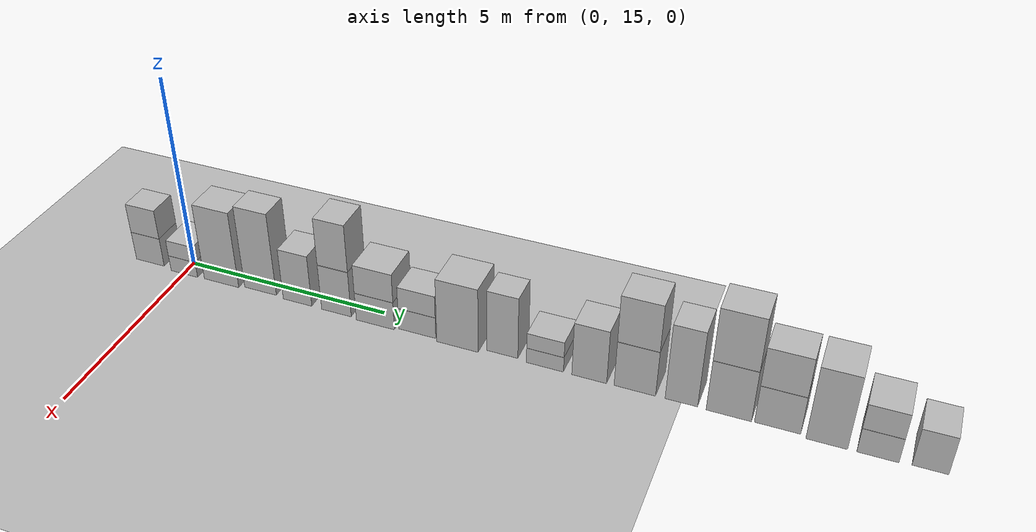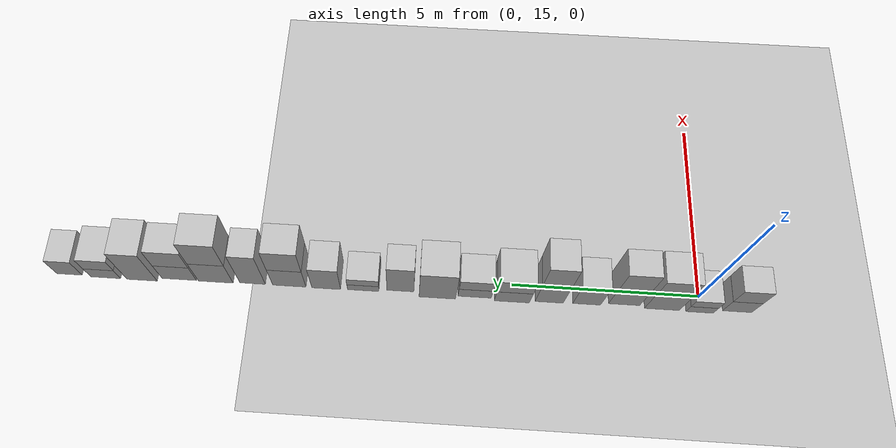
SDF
<sdf version="1.5">
 <world name="default">
  <model name="ground_plane">
   <static>true</static>
   <link name="link">
    <collision name="collision">
     <geometry><plane><normal>0 0 1</normal><size>250 250</size></plane></geometry>
     <surface><friction><ode><mu>1</mu><mu2>1</mu2></ode></friction></surface>
    </collision>
    <visual name="grass">
     <cast_shadows>false</cast_shadows>
     <geometry><mesh><uri>file://grass_plane/meshes/grass_plane.dae</uri></mesh></geometry>
    </visual>
   </link>
  </model>
  <model name="Cardboard_box_484">
   <link name="link_0">
    <pose>0 14 0 0 0 0</pose>
    <inertial>
     <mass>1</mass>
     <inertia>
      <ixx>0.166667</ixx>
      <ixy>0</ixy>
      <ixz>0</ixz>
      <iyy>0.166667</iyy>
      <iyz>0</iyz>
      <izz>0.166667</izz>
     </inertia>
    </inertial>
    <collision name="collision">
     <geometry>
      <mesh>
       <uri>model://Cardboard_box/meshes/cardboard_box.dae</uri>
       <scale>1.78481445856 1.95210257599 1.99450164474</scale>
      </mesh>
     </geometry>
    </collision>
    <visual name="visual">
     <geometry>
      <mesh>
       <uri>model://Cardboard_box/meshes/cardboard_box.dae</uri>
       <scale>1.78481445856 1.95210257599 1.99450164474</scale>
      </mesh>
     </geometry>
    </visual>
   </link>
   <static>1</static>
  </model>
  <model name="Cardboard_box_top_484">
   <link name="link_0">
    <pose>0 14 0.797800657898 0 0 0</pose>
    <inertial>
     <mass>1</mass>
     <inertia>
      <ixx>0.166667</ixx>
      <ixy>0</ixy>
      <ixz>0</ixz>
      <iyy>0.166667</iyy>
      <iyz>0</iyz>
      <izz>0.166667</izz>
     </inertia>
    </inertial>
    <collision name="collision">
     <geometry>
      <mesh>
       <uri>model://Cardboard_box/meshes/cardboard_box.dae</uri>
       <scale>1.78481445856 1.95210257599 1.99450164474</scale>
      </mesh>
     </geometry>
    </collision>
    <visual name="visual">
     <geometry>
      <mesh>
       <uri>model://Cardboard_box/meshes/cardboard_box.dae</uri>
       <scale>1.78481445856 1.95210257599 1.99450164474</scale>
      </mesh>
     </geometry>
    </visual>
   </link>
   <static>1</static>
  </model>
  <model name="Cardboard_box_485">
   <link name="link_0">
    <pose>0 15 0 0 0 0</pose>
    <inertial>
     <mass>1</mass>
     <inertia>
      <ixx>0.166667</ixx>
      <ixy>0</ixy>
      <ixz>0</ixz>
      <iyy>0.166667</iyy>
      <iyz>0</iyz>
      <izz>0.166667</izz>
     </inertia>
    </inertial>
    <collision name="collision">
     <geometry>
      <mesh>
       <uri>model://Cardboard_box/meshes/cardboard_box.dae</uri>
       <scale>2.20744234936 1.83287435469 1.09911375683</scale>
      </mesh>
     </geometry>
    </collision>
    <visual name="visual">
     <geometry>
      <mesh>
       <uri>model://Cardboard_box/meshes/cardboard_box.dae</uri>
       <scale>2.20744234936 1.83287435469 1.09911375683</scale>
      </mesh>
     </geometry>
    </visual>
   </link>
   <static>1</static>
  </model>
  <model name="Cardboard_box_top_485">
   <link name="link_0">
    <pose>0 15 0.439645502732 0 0 0</pose>
    <inertial>
     <mass>1</mass>
     <inertia>
      <ixx>0.166667</ixx>
      <ixy>0</ixy>
      <ixz>0</ixz>
      <iyy>0.166667</iyy>
      <iyz>0</iyz>
      <izz>0.166667</izz>
     </inertia>
    </inertial>
    <collision name="collision">
     <geometry>
      <mesh>
       <uri>model://Cardboard_box/meshes/cardboard_box.dae</uri>
       <scale>2.20744234936 1.83287435469 1.09911375683</scale>
      </mesh>
     </geometry>
    </collision>
    <visual name="visual">
     <geometry>
      <mesh>
       <uri>model://Cardboard_box/meshes/cardboard_box.dae</uri>
       <scale>2.20744234936 1.83287435469 1.09911375683</scale>
      </mesh>
     </geometry>
    </visual>
   </link>
   <static>1</static>
  </model>
  <model name="Cardboard_box_486">
   <link name="link_0">
    <pose>0 16 0 0 0 0</pose>
    <inertial>
     <mass>1</mass>
     <inertia>
      <ixx>0.166667</ixx>
      <ixy>0</ixy>
      <ixz>0</ixz>
      <iyy>0.166667</iyy>
      <iyz>0</iyz>
      <izz>0.166667</izz>
     </inertia>
    </inertial>
    <collision name="collision">
     <geometry>
      <mesh>
       <uri>model://Cardboard_box/meshes/cardboard_box.dae</uri>
       <scale>2.1160084739 2.3361882195 5.29765422227</scale>
      </mesh>
     </geometry>
    </collision>
    <visual name="visual">
     <geometry>
      <mesh>
       <uri>model://Cardboard_box/meshes/cardboard_box.dae</uri>
       <scale>2.1160084739 2.3361882195 5.29765422227</scale>
      </mesh>
     </geometry>
    </visual>
   </link>
   <static>1</static>
  </model>
  <model name="Cardboard_box_487">
   <link name="link_0">
    <pose>0 17 0 0 0 0</pose>
    <inertial>
     <mass>1</mass>
     <inertia>
      <ixx>0.166667</ixx>
      <ixy>0</ixy>
      <ixz>0</ixz>
      <iyy>0.166667</iyy>
      <iyz>0</iyz>
      <izz>0.166667</izz>
     </inertia>
    </inertial>
    <collision name="collision">
     <geometry>
      <mesh>
       <uri>model://Cardboard_box/meshes/cardboard_box.dae</uri>
       <scale>1.76354040821 2.10359339671 5.72473711056</scale>
      </mesh>
     </geometry>
    </collision>
    <visual name="visual">
     <geometry>
      <mesh>
       <uri>model://Cardboard_box/meshes/cardboard_box.dae</uri>
       <scale>1.76354040821 2.10359339671 5.72473711056</scale>
      </mesh>
     </geometry>
    </visual>
   </link>
   <static>1</static>
  </model>
  <model name="Cardboard_box_488">
   <link name="link_0">
    <pose>0 18 0 0 0 0</pose>
    <inertial>
     <mass>1</mass>
     <inertia>
      <ixx>0.166667</ixx>
      <ixy>0</ixy>
      <ixz>0</ixz>
      <iyy>0.166667</iyy>
      <iyz>0</iyz>
      <izz>0.166667</izz>
     </inertia>
    </inertial>
    <collision name="collision">
     <geometry>
      <mesh>
       <uri>model://Cardboard_box/meshes/cardboard_box.dae</uri>
       <scale>2.03437143408 1.86106038247 3.5471341314</scale>
      </mesh>
     </geometry>
    </collision>
    <visual name="visual">
     <geometry>
      <mesh>
       <uri>model://Cardboard_box/meshes/cardboard_box.dae</uri>
       <scale>2.03437143408 1.86106038247 3.5471341314</scale>
      </mesh>
     </geometry>
    </visual>
   </link>
   <static>1</static>
  </model>
  <model name="Cardboard_box_489">
   <link name="link_0">
    <pose>0 19 0 0 0 0</pose>
    <inertial>
     <mass>1</mass>
     <inertia>
      <ixx>0.166667</ixx>
      <ixy>0</ixy>
      <ixz>0</ixz>
      <iyy>0.166667</iyy>
      <iyz>0</iyz>
      <izz>0.166667</izz>
     </inertia>
    </inertial>
    <collision name="collision">
     <geometry>
      <mesh>
       <uri>model://Cardboard_box/meshes/cardboard_box.dae</uri>
       <scale>2.07848241554 1.88696796736 3.16638839027</scale>
      </mesh>
     </geometry>
    </collision>
    <visual name="visual">
     <geometry>
      <mesh>
       <uri>model://Cardboard_box/meshes/cardboard_box.dae</uri>
       <scale>2.07848241554 1.88696796736 3.16638839027</scale>
      </mesh>
     </geometry>
    </visual>
   </link>
   <static>1</static>
  </model>
  <model name="Cardboard_box_top_489">
   <link name="link_0">
    <pose>0 19 1.26655535611 0 0 0</pose>
    <inertial>
     <mass>1</mass>
     <inertia>
      <ixx>0.166667</ixx>
      <ixy>0</ixy>
      <ixz>0</ixz>
      <iyy>0.166667</iyy>
      <iyz>0</iyz>
      <izz>0.166667</izz>
     </inertia>
    </inertial>
    <collision name="collision">
     <geometry>
      <mesh>
       <uri>model://Cardboard_box/meshes/cardboard_box.dae</uri>
       <scale>2.07848241554 1.88696796736 3.16638839027</scale>
      </mesh>
     </geometry>
    </collision>
    <visual name="visual">
     <geometry>
      <mesh>
       <uri>model://Cardboard_box/meshes/cardboard_box.dae</uri>
       <scale>2.07848241554 1.88696796736 3.16638839027</scale>
      </mesh>
     </geometry>
    </visual>
   </link>
   <static>1</static>
  </model>
  <model name="Cardboard_box_490">
   <link name="link_0">
    <pose>0 20 0 0 0 0</pose>
    <inertial>
     <mass>1</mass>
     <inertia>
      <ixx>0.166667</ixx>
      <ixy>0</ixy>
      <ixz>0</ixz>
      <iyy>0.166667</iyy>
      <iyz>0</iyz>
      <izz>0.166667</izz>
     </inertia>
    </inertial>
    <collision name="collision">
     <geometry>
      <mesh>
       <uri>model://Cardboard_box/meshes/cardboard_box.dae</uri>
       <scale>2.33740824375 2.37336328988 1.93179243716</scale>
      </mesh>
     </geometry>
    </collision>
    <visual name="visual">
     <geometry>
      <mesh>
       <uri>model://Cardboard_box/meshes/cardboard_box.dae</uri>
       <scale>2.33740824375 2.37336328988 1.93179243716</scale>
      </mesh>
     </geometry>
    </visual>
   </link>
   <static>1</static>
  </model>
  <model name="Cardboard_box_top_490">
   <link name="link_0">
    <pose>0 20 0.772716974864 0 0 0</pose>
    <inertial>
     <mass>1</mass>
     <inertia>
      <ixx>0.166667</ixx>
      <ixy>0</ixy>
      <ixz>0</ixz>
      <iyy>0.166667</iyy>
      <iyz>0</iyz>
      <izz>0.166667</izz>
     </inertia>
    </inertial>
    <collision name="collision">
     <geometry>
      <mesh>
       <uri>model://Cardboard_box/meshes/cardboard_box.dae</uri>
       <scale>2.33740824375 2.37336328988 1.93179243716</scale>
      </mesh>
     </geometry>
    </collision>
    <visual name="visual">
     <geometry>
      <mesh>
       <uri>model://Cardboard_box/meshes/cardboard_box.dae</uri>
       <scale>2.33740824375 2.37336328988 1.93179243716</scale>
      </mesh>
     </geometry>
    </visual>
   </link>
   <static>1</static>
  </model>
  <model name="Cardboard_box_491">
   <link name="link_0">
    <pose>0 21 0 0 0 0</pose>
    <inertial>
     <mass>1</mass>
     <inertia>
      <ixx>0.166667</ixx>
      <ixy>0</ixy>
      <ixz>0</ixz>
      <iyy>0.166667</iyy>
      <iyz>0</iyz>
      <izz>0.166667</izz>
     </inertia>
    </inertial>
    <collision name="collision">
     <geometry>
      <mesh>
       <uri>model://Cardboard_box/meshes/cardboard_box.dae</uri>
       <scale>1.99371883114 2.25232498525 1.4755215318</scale>
      </mesh>
     </geometry>
    </collision>
    <visual name="visual">
     <geometry>
      <mesh>
       <uri>model://Cardboard_box/meshes/cardboard_box.dae</uri>
       <scale>1.99371883114 2.25232498525 1.4755215318</scale>
      </mesh>
     </geometry>
    </visual>
   </link>
   <static>1</static>
  </model>
  <model name="Cardboard_box_top_491">
   <link name="link_0">
    <pose>0 21 0.590208612721 0 0 0</pose>
    <inertial>
     <mass>1</mass>
     <inertia>
      <ixx>0.166667</ixx>
      <ixy>0</ixy>
      <ixz>0</ixz>
      <iyy>0.166667</iyy>
      <iyz>0</iyz>
      <izz>0.166667</izz>
     </inertia>
    </inertial>
    <collision name="collision">
     <geometry>
      <mesh>
       <uri>model://Cardboard_box/meshes/cardboard_box.dae</uri>
       <scale>1.99371883114 2.25232498525 1.4755215318</scale>
      </mesh>
     </geometry>
    </collision>
    <visual name="visual">
     <geometry>
      <mesh>
       <uri>model://Cardboard_box/meshes/cardboard_box.dae</uri>
       <scale>1.99371883114 2.25232498525 1.4755215318</scale>
      </mesh>
     </geometry>
    </visual>
   </link>
   <static>1</static>
  </model>
  <model name="Cardboard_box_492">
   <link name="link_0">
    <pose>0 22 0 0 0 0</pose>
    <inertial>
     <mass>1</mass>
     <inertia>
      <ixx>0.166667</ixx>
      <ixy>0</ixy>
      <ixz>0</ixz>
      <iyy>0.166667</iyy>
      <iyz>0</iyz>
      <izz>0.166667</izz>
     </inertia>
    </inertial>
    <collision name="collision">
     <geometry>
      <mesh>
       <uri>model://Cardboard_box/meshes/cardboard_box.dae</uri>
       <scale>2.42751208898 2.4667304502 4.36444402055</scale>
      </mesh>
     </geometry>
    </collision>
    <visual name="visual">
     <geometry>
      <mesh>
       <uri>model://Cardboard_box/meshes/cardboard_box.dae</uri>
       <scale>2.42751208898 2.4667304502 4.36444402055</scale>
      </mesh>
     </geometry>
    </visual>
   </link>
   <static>1</static>
  </model>
  <model name="Cardboard_box_493">
   <link name="link_0">
    <pose>0 23 0 0 0 0</pose>
    <inertial>
     <mass>1</mass>
     <inertia>
      <ixx>0.166667</ixx>
      <ixy>0</ixy>
      <ixz>0</ixz>
      <iyy>0.166667</iyy>
      <iyz>0</iyz>
      <izz>0.166667</izz>
     </inertia>
    </inertial>
    <collision name="collision">
     <geometry>
      <mesh>
       <uri>model://Cardboard_box/meshes/cardboard_box.dae</uri>
       <scale>1.76581732817 1.82877413057 4.15876575171</scale>
      </mesh>
     </geometry>
    </collision>
    <visual name="visual">
     <geometry>
      <mesh>
       <uri>model://Cardboard_box/meshes/cardboard_box.dae</uri>
       <scale>1.76581732817 1.82877413057 4.15876575171</scale>
      </mesh>
     </geometry>
    </visual>
   </link>
   <static>1</static>
  </model>
  <model name="Cardboard_box_494">
   <link name="link_0">
    <pose>0 24 0 0 0 0</pose>
    <inertial>
     <mass>1</mass>
     <inertia>
      <ixx>0.166667</ixx>
      <ixy>0</ixy>
      <ixz>0</ixz>
      <iyy>0.166667</iyy>
      <iyz>0</iyz>
      <izz>0.166667</izz>
     </inertia>
    </inertial>
    <collision name="collision">
     <geometry>
      <mesh>
       <uri>model://Cardboard_box/meshes/cardboard_box.dae</uri>
       <scale>2.02403159961 2.12676382006 1.02539851359</scale>
      </mesh>
     </geometry>
    </collision>
    <visual name="visual">
     <geometry>
      <mesh>
       <uri>model://Cardboard_box/meshes/cardboard_box.dae</uri>
       <scale>2.02403159961 2.12676382006 1.02539851359</scale>
      </mesh>
     </geometry>
    </visual>
   </link>
   <static>1</static>
  </model>
  <model name="Cardboard_box_top_494">
   <link name="link_0">
    <pose>0 24 0.410159405434 0 0 0</pose>
    <inertial>
     <mass>1</mass>
     <inertia>
      <ixx>0.166667</ixx>
      <ixy>0</ixy>
      <ixz>0</ixz>
      <iyy>0.166667</iyy>
      <iyz>0</iyz>
      <izz>0.166667</izz>
     </inertia>
    </inertial>
    <collision name="collision">
     <geometry>
      <mesh>
       <uri>model://Cardboard_box/meshes/cardboard_box.dae</uri>
       <scale>2.02403159961 2.12676382006 1.02539851359</scale>
      </mesh>
     </geometry>
    </collision>
    <visual name="visual">
     <geometry>
      <mesh>
       <uri>model://Cardboard_box/meshes/cardboard_box.dae</uri>
       <scale>2.02403159961 2.12676382006 1.02539851359</scale>
      </mesh>
     </geometry>
    </visual>
   </link>
   <static>1</static>
  </model>
  <model name="Cardboard_box_495">
   <link name="link_0">
    <pose>0 25 0 0 0 0</pose>
    <inertial>
     <mass>1</mass>
     <inertia>
      <ixx>0.166667</ixx>
      <ixy>0</ixy>
      <ixz>0</ixz>
      <iyy>0.166667</iyy>
      <iyz>0</iyz>
      <izz>0.166667</izz>
     </inertia>
    </inertial>
    <collision name="collision">
     <geometry>
      <mesh>
       <uri>model://Cardboard_box/meshes/cardboard_box.dae</uri>
       <scale>2.06834403224 1.95375787298 3.58450016817</scale>
      </mesh>
     </geometry>
    </collision>
    <visual name="visual">
     <geometry>
      <mesh>
       <uri>model://Cardboard_box/meshes/cardboard_box.dae</uri>
       <scale>2.06834403224 1.95375787298 3.58450016817</scale>
      </mesh>
     </geometry>
    </visual>
   </link>
   <static>1</static>
  </model>
  <model name="Cardboard_box_496">
   <link name="link_0">
    <pose>0 26 0 0 0 0</pose>
    <inertial>
     <mass>1</mass>
     <inertia>
      <ixx>0.166667</ixx>
      <ixy>0</ixy>
      <ixz>0</ixz>
      <iyy>0.166667</iyy>
      <iyz>0</iyz>
      <izz>0.166667</izz>
     </inertia>
    </inertial>
    <collision name="collision">
     <geometry>
      <mesh>
       <uri>model://Cardboard_box/meshes/cardboard_box.dae</uri>
       <scale>2.02667728065 2.27222618498 3.04202506224</scale>
      </mesh>
     </geometry>
    </collision>
    <visual name="visual">
     <geometry>
      <mesh>
       <uri>model://Cardboard_box/meshes/cardboard_box.dae</uri>
       <scale>2.02667728065 2.27222618498 3.04202506224</scale>
      </mesh>
     </geometry>
    </visual>
   </link>
   <static>1</static>
  </model>
  <model name="Cardboard_box_top_496">
   <link name="link_0">
    <pose>0 26 1.2168100249 0 0 0</pose>
    <inertial>
     <mass>1</mass>
     <inertia>
      <ixx>0.166667</ixx>
      <ixy>0</ixy>
      <ixz>0</ixz>
      <iyy>0.166667</iyy>
      <iyz>0</iyz>
      <izz>0.166667</izz>
     </inertia>
    </inertial>
    <collision name="collision">
     <geometry>
      <mesh>
       <uri>model://Cardboard_box/meshes/cardboard_box.dae</uri>
       <scale>2.02667728065 2.27222618498 3.04202506224</scale>
      </mesh>
     </geometry>
    </collision>
    <visual name="visual">
     <geometry>
      <mesh>
       <uri>model://Cardboard_box/meshes/cardboard_box.dae</uri>
       <scale>2.02667728065 2.27222618498 3.04202506224</scale>
      </mesh>
     </geometry>
    </visual>
   </link>
   <static>1</static>
  </model>
  <model name="Cardboard_box_497">
   <link name="link_0">
    <pose>0 27 0 0 0 0</pose>
    <inertial>
     <mass>1</mass>
     <inertia>
      <ixx>0.166667</ixx>
      <ixy>0</ixy>
      <ixz>0</ixz>
      <iyy>0.166667</iyy>
      <iyz>0</iyz>
      <izz>0.166667</izz>
     </inertia>
    </inertial>
    <collision name="collision">
     <geometry>
      <mesh>
       <uri>model://Cardboard_box/meshes/cardboard_box.dae</uri>
       <scale>1.99282091313 1.74170873502 5.05455932831</scale>
      </mesh>
     </geometry>
    </collision>
    <visual name="visual">
     <geometry>
      <mesh>
       <uri>model://Cardboard_box/meshes/cardboard_box.dae</uri>
       <scale>1.99282091313 1.74170873502 5.05455932831</scale>
      </mesh>
     </geometry>
    </visual>
   </link>
   <static>1</static>
  </model>
  <model name="Cardboard_box_498">
   <link name="link_0">
    <pose>0 28 0 0 0 0</pose>
    <inertial>
     <mass>1</mass>
     <inertia>
      <ixx>0.166667</ixx>
      <ixy>0</ixy>
      <ixz>0</ixz>
      <iyy>0.166667</iyy>
      <iyz>0</iyz>
      <izz>0.166667</izz>
     </inertia>
    </inertial>
    <collision name="collision">
     <geometry>
      <mesh>
       <uri>model://Cardboard_box/meshes/cardboard_box.dae</uri>
       <scale>2.09934004089 2.37868704931 3.40468869006</scale>
      </mesh>
     </geometry>
    </collision>
    <visual name="visual">
     <geometry>
      <mesh>
       <uri>model://Cardboard_box/meshes/cardboard_box.dae</uri>
       <scale>2.09934004089 2.37868704931 3.40468869006</scale>
      </mesh>
     </geometry>
    </visual>
   </link>
   <static>1</static>
  </model>
  <model name="Cardboard_box_top_498">
   <link name="link_0">
    <pose>0 28 1.36187547602 0 0 0</pose>
    <inertial>
     <mass>1</mass>
     <inertia>
      <ixx>0.166667</ixx>
      <ixy>0</ixy>
      <ixz>0</ixz>
      <iyy>0.166667</iyy>
      <iyz>0</iyz>
      <izz>0.166667</izz>
     </inertia>
    </inertial>
    <collision name="collision">
     <geometry>
      <mesh>
       <uri>model://Cardboard_box/meshes/cardboard_box.dae</uri>
       <scale>2.09934004089 2.37868704931 3.40468869006</scale>
      </mesh>
     </geometry>
    </collision>
    <visual name="visual">
     <geometry>
      <mesh>
       <uri>model://Cardboard_box/meshes/cardboard_box.dae</uri>
       <scale>2.09934004089 2.37868704931 3.40468869006</scale>
      </mesh>
     </geometry>
    </visual>
   </link>
   <static>1</static>
  </model>
  <model name="Cardboard_box_499">
   <link name="link_0">
    <pose>0 29 0 0 0 0</pose>
    <inertial>
     <mass>1</mass>
     <inertia>
      <ixx>0.166667</ixx>
      <ixy>0</ixy>
      <ixz>0</ixz>
      <iyy>0.166667</iyy>
      <iyz>0</iyz>
      <izz>0.166667</izz>
     </inertia>
    </inertial>
    <collision name="collision">
     <geometry>
      <mesh>
       <uri>model://Cardboard_box/meshes/cardboard_box.dae</uri>
       <scale>2.04281973142 2.36859499689 2.51692150823</scale>
      </mesh>
     </geometry>
    </collision>
    <visual name="visual">
     <geometry>
      <mesh>
       <uri>model://Cardboard_box/meshes/cardboard_box.dae</uri>
       <scale>2.04281973142 2.36859499689 2.51692150823</scale>
      </mesh>
     </geometry>
    </visual>
   </link>
   <static>1</static>
  </model>
  <model name="Cardboard_box_top_499">
   <link name="link_0">
    <pose>0 29 1.00676860329 0 0 0</pose>
    <inertial>
     <mass>1</mass>
     <inertia>
      <ixx>0.166667</ixx>
      <ixy>0</ixy>
      <ixz>0</ixz>
      <iyy>0.166667</iyy>
      <iyz>0</iyz>
      <izz>0.166667</izz>
     </inertia>
    </inertial>
    <collision name="collision">
     <geometry>
      <mesh>
       <uri>model://Cardboard_box/meshes/cardboard_box.dae</uri>
       <scale>2.04281973142 2.36859499689 2.51692150823</scale>
      </mesh>
     </geometry>
    </collision>
    <visual name="visual">
     <geometry>
      <mesh>
       <uri>model://Cardboard_box/meshes/cardboard_box.dae</uri>
       <scale>2.04281973142 2.36859499689 2.51692150823</scale>
      </mesh>
     </geometry>
    </visual>
   </link>
   <static>1</static>
  </model>
  <model name="Cardboard_box_500">
   <link name="link_0">
    <pose>0 30 0 0 0 0</pose>
    <inertial>
     <mass>1</mass>
     <inertia>
      <ixx>0.166667</ixx>
      <ixy>0</ixy>
      <ixz>0</ixz>
      <iyy>0.166667</iyy>
      <iyz>0</iyz>
      <izz>0.166667</izz>
     </inertia>
    </inertial>
    <collision name="collision">
     <geometry>
      <mesh>
       <uri>model://Cardboard_box/meshes/cardboard_box.dae</uri>
       <scale>2.4708847499 2.08171585257 4.84592289531</scale>
      </mesh>
     </geometry>
    </collision>
    <visual name="visual">
     <geometry>
      <mesh>
       <uri>model://Cardboard_box/meshes/cardboard_box.dae</uri>
       <scale>2.4708847499 2.08171585257 4.84592289531</scale>
      </mesh>
     </geometry>
    </visual>
   </link>
   <static>1</static>
  </model>
  <model name="Cardboard_box_501">
   <link name="link_0">
    <pose>0 31 0 0 0 0</pose>
    <inertial>
     <mass>1</mass>
     <inertia>
      <ixx>0.166667</ixx>
      <ixy>0</ixy>
      <ixz>0</ixz>
      <iyy>0.166667</iyy>
      <iyz>0</iyz>
      <izz>0.166667</izz>
     </inertia>
    </inertial>
    <collision name="collision">
     <geometry>
      <mesh>
       <uri>model://Cardboard_box/meshes/cardboard_box.dae</uri>
       <scale>2.43816382074 2.05538248568 1.62020981953</scale>
      </mesh>
     </geometry>
    </collision>
    <visual name="visual">
     <geometry>
      <mesh>
       <uri>model://Cardboard_box/meshes/cardboard_box.dae</uri>
       <scale>2.43816382074 2.05538248568 1.62020981953</scale>
      </mesh>
     </geometry>
    </visual>
   </link>
   <static>1</static>
  </model>
  <model name="Cardboard_box_top_501">
   <link name="link_0">
    <pose>0 31 0.648083927812 0 0 0</pose>
    <inertial>
     <mass>1</mass>
     <inertia>
      <ixx>0.166667</ixx>
      <ixy>0</ixy>
      <ixz>0</ixz>
      <iyy>0.166667</iyy>
      <iyz>0</iyz>
      <izz>0.166667</izz>
     </inertia>
    </inertial>
    <collision name="collision">
     <geometry>
      <mesh>
       <uri>model://Cardboard_box/meshes/cardboard_box.dae</uri>
       <scale>2.43816382074 2.05538248568 1.62020981953</scale>
      </mesh>
     </geometry>
    </collision>
    <visual name="visual">
     <geometry>
      <mesh>
       <uri>model://Cardboard_box/meshes/cardboard_box.dae</uri>
       <scale>2.43816382074 2.05538248568 1.62020981953</scale>
      </mesh>
     </geometry>
    </visual>
   </link>
   <static>1</static>
  </model>
  <model name="Cardboard_box_502">
   <link name="link_0">
    <pose>0 32 0 0 0 0</pose>
    <inertial>
     <mass>1</mass>
     <inertia>
      <ixx>0.166667</ixx>
      <ixy>0</ixy>
      <ixz>0</ixz>
      <iyy>0.166667</iyy>
      <iyz>0</iyz>
      <izz>0.166667</izz>
     </inertia>
    </inertial>
    <collision name="collision">
     <geometry>
      <mesh>
       <uri>model://Cardboard_box/meshes/cardboard_box.dae</uri>
       <scale>2.27750854951 1.75310440228 2.4870144323</scale>
      </mesh>
     </geometry>
    </collision>
    <visual name="visual">
     <geometry>
      <mesh>
       <uri>model://Cardboard_box/meshes/cardboard_box.dae</uri>
       <scale>2.27750854951 1.75310440228 2.4870144323</scale>
      </mesh>
     </geometry>
    </visual>
   </link>
   <static>1</static>
  </model>
 </world>
</sdf>
